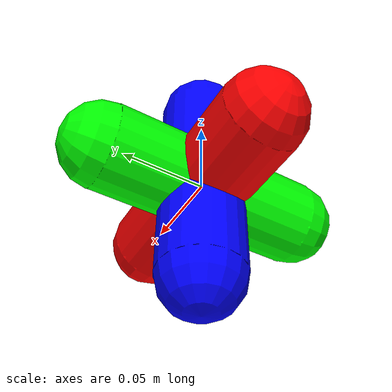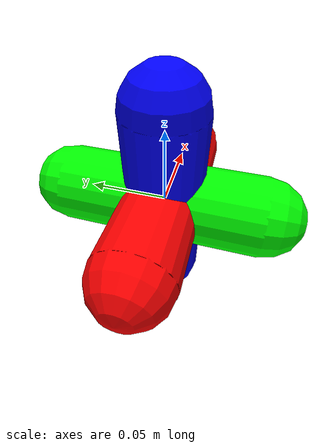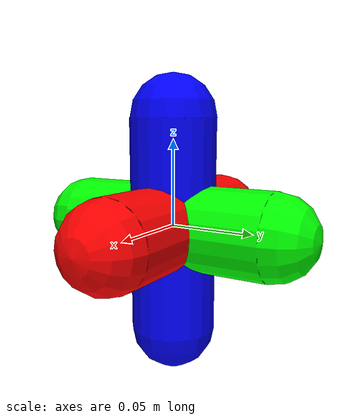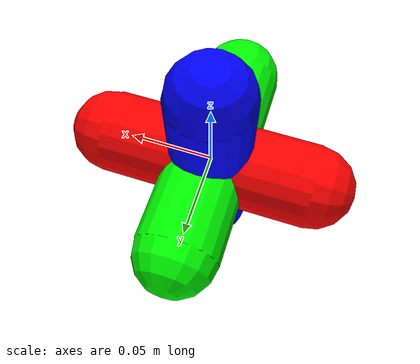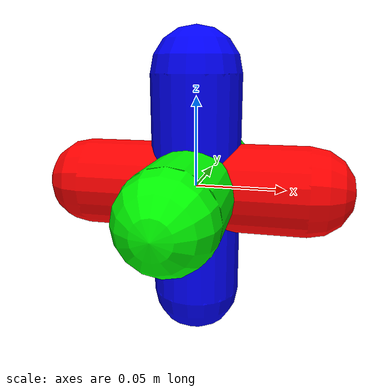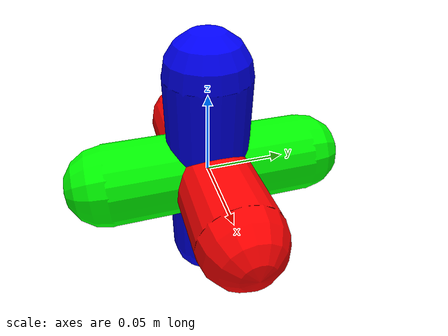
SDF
<?xml version="1.0"?>
<sdf version="1.7">
  <model name="jack">
    <link name="capsule_1">
        <inertial>
            <pose>0 0 0 0 0 0</pose>
            <mass>0.052</mass>
            <!-- Inertia values were calculated to be consistent with the mass
            and geometry size, assuming a uniform density. -->
            <inertia>
            <ixx>0.00007072</ixx>
            <ixy>0</ixy>
            <ixz>0</ixz>
            <iyy>0.00007072</iyy>
            <iyz>0</iyz>
            <izz>0.00000572</izz>
            </inertia>
        </inertial>
        <collision name="capsule_1">
            <pose>0 0 0.0 0 0 0</pose>
            <geometry>
            <capsule>
                <radius>0.025</radius>
                <length>0.125</length>
            </capsule>
            </geometry>
            <drake:proximity_properties>
            <drake:mu_dynamic>0.3</drake:mu_dynamic>
            </drake:proximity_properties>
        </collision>
        <visual name="capsule_1">
            <pose>0 0 0.0 0 0 0</pose>
            <geometry>
            <capsule>
                <radius>0.025</radius>
                <length>0.125</length>
            </capsule>
            </geometry>
            <material>
            <diffuse>0 0 1 1</diffuse>
            </material>
        </visual>
    </link>
    <link name="capsule_2">
        <inertial>
            <pose>0 0 0 0 1.5708 0</pose>
            <mass>0.052</mass>
            <!-- Inertia values were calculated to be consistent with the mass
            and geometry size, assuming a uniform density. -->
            <inertia>
            <ixx>0.00007072</ixx>
            <ixy>0</ixy>
            <ixz>0</ixz>
            <iyy>0.00007072</iyy>
            <iyz>0</iyz>
            <izz>0.00000572</izz>
            </inertia>
        </inertial>
        <collision name="capsule_2">
            <pose>0 0 0 0 1.5708 0</pose>
            <geometry>
            <capsule>
                <radius>0.025</radius>
                <length>0.125</length>
            </capsule>
            </geometry>
            <drake:proximity_properties>
            <drake:mu_dynamic>0.3</drake:mu_dynamic>
            </drake:proximity_properties>
        </collision>
        <visual name="capsule_2">
            <pose>0 0 0 0 1.5708 0</pose>
            <geometry>
            <capsule>
                <radius>0.025</radius>
                <length>0.125</length>
            </capsule>
            </geometry>
            <material>
            <diffuse>1 0 0 1</diffuse>
            </material>
        </visual>
    </link>
    <link name="capsule_3">
        <inertial>
            <pose>0 0 0 1.5708 0 0</pose>
            <mass>0.052</mass>
            <!-- Inertia values were calculated to be consistent with the mass
            and geometry size, assuming a uniform density. -->
            <inertia>
            <ixx>0.00007072</ixx>
            <ixy>0</ixy>
            <ixz>0</ixz>
            <iyy>0.00007072</iyy>
            <iyz>0</iyz>
            <izz>0.00000572</izz>
            </inertia>
        </inertial>
        <collision name="capsule_3">
            <pose>0 0 0 1.5708 0 0</pose>
            <geometry>
            <capsule>
                <radius>0.025</radius>
                <length>0.125</length>
            </capsule>
            </geometry>
            <drake:proximity_properties>
            <drake:mu_dynamic>0.3</drake:mu_dynamic>
            </drake:proximity_properties>
        </collision>
        <visual name="capsule_3">
            <pose>0 0 0 1.5708 0 0</pose>
            <geometry>
            <capsule>
                <radius>0.025</radius>
                <length>0.125</length>
            </capsule>
            </geometry>
            <material>
            <diffuse>0 1 0 1</diffuse>
            </material>
        </visual>
    </link>

    <!-- Joints to connect the capsules-->
    <joint name="attach_joint" type="fixed">
        <parent>capsule_1</parent>
        <child>capsule_2</child>
        <pose>0 0 0 0 0 0</pose>
    </joint>

    <joint name="attach_joint2" type="fixed">
        <parent>capsule_2</parent>
        <child>capsule_3</child>
        <pose>0 0 0 0 0 0</pose>
    </joint>

  </model>
</sdf>
